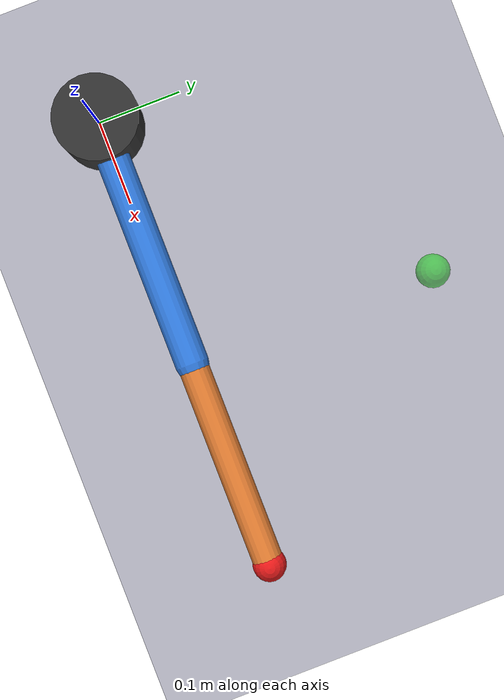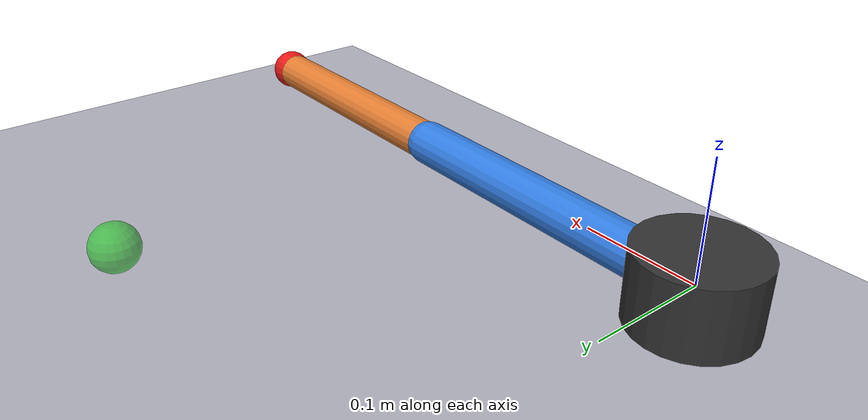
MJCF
<mujoco model="2dof_arm">
  <compiler angle="radian" coordinate="local" inertiafromgeom="true"/>

  <option gravity="0 0 -9.81" timestep="0.002" integrator="RK4"/>

  <default>
    <joint damping="0.5" armature="0.01"/>
    <geom rgba="0.7 0.7 0.75 1" friction="1 0.1 0.1"/>
  </default>

  <asset>
    <texture type="skybox" builtin="gradient" rgb1="0.95 0.95 1" rgb2="0.6 0.7 0.9" width="128" height="128"/>
    <texture name="grid" type="2d" builtin="checker" rgb1="0.85 0.85 0.85" rgb2="0.75 0.75 0.75" width="300" height="300"/>
    <material name="grid_mat" texture="grid" texrepeat="6 6" reflectance="0.0"/>
  </asset>

  <worldbody>
    <light diffuse="0.9 0.9 0.9" pos="0 0 3" dir="0 0 -1"/>
    <geom name="floor" type="plane" size="1.2 1.2 0.02" pos="0 0 -0.05" material="grid_mat"/>

    <!-- Fixed base -->
    <body name="base" pos="0 0 0">
      <geom name="base_geom" type="cylinder" size="0.05 0.03" pos="0 0 0" rgba="0.2 0.2 0.2 1"/>

      <!-- Link 1: rotates about Z at the base -->
      <body name="link1" pos="0 0 0">
        <joint name="joint1" type="hinge" axis="0 0 1" pos="0 0 0" range="-3.14159 3.14159"/>
        <geom name="link1_geom" type="capsule" fromto="0 0 0  0.30 0 0" size="0.02" rgba="0.2 0.5 0.9 1"/>
        <inertial pos="0.15 0 0" mass="0.6" diaginertia="0.001 0.0135 0.0135"/>

        <!-- Link 2: rotates about Z at the end of link 1 -->
        <body name="link2" pos="0.30 0 0">
          <joint name="joint2" type="hinge" axis="0 0 1" pos="0 0 0" range="-3.05 3.05"/>
          <geom name="link2_geom" type="capsule" fromto="0 0 0  0.25 0 0" size="0.018" rgba="0.9 0.5 0.2 1"/>
          <inertial pos="0.125 0 0" mass="0.4" diaginertia="0.0007 0.0053 0.0053"/>

          <!-- End effector marker at tip of link 2 -->
          <body name="end_effector" pos="0.25 0 0">
            <geom name="ee_geom" type="sphere" size="0.02" rgba="0.9 0.1 0.1 1" contype="0" conaffinity="0" mass="0.01"/>
            <site name="ee_site" pos="0 0 0" size="0.005"/>
          </body>
        </body>
      </body>
    </body>

    <!-- Target marker: a mocap body so we can move it freely from Python
         without it being simulated by the physics engine. -->
    <body name="target" mocap="true" pos="0.3 0.3 0">
      <geom name="target_geom" type="sphere" size="0.02" rgba="0.1 0.8 0.1 0.6" contype="0" conaffinity="0"/>
    </body>
  </worldbody>

  <actuator>
    <motor name="motor1" joint="joint1" gear="1" ctrllimited="true" ctrlrange="-5 5"/>
    <motor name="motor2" joint="joint2" gear="1" ctrllimited="true" ctrlrange="-5 5"/>
  </actuator>
</mujoco>
